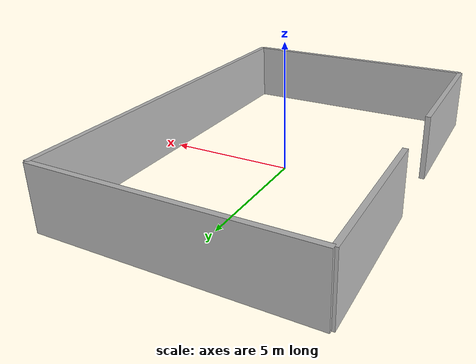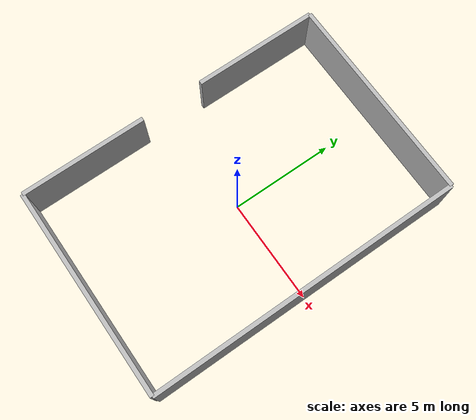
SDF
<sdf version='1.6'>
  <world name='test_solo_muri'>
    <scene>
      <background>0.2 0.2 0.2 1</background>
      <grid>true</grid>
    </scene>
    <include><uri>model://sun</uri></include>

    <!-- Muri perimetrali (un rettangolo di 10x15 metri) -->
    <model name='walls'>
      <static>true</static>
      <pose>0 0 0 0 0 0</pose>
      <link name='link'>
        <collision name='wall_north'><pose>0 7.5 1.25 0 0 0</pose><geometry><box><size>10 0.2 2.5</size></box></geometry></collision>
        <visual name='visual_north'><pose>0 7.5 1.25 0 0 0</pose><geometry><box><size>10 0.2 2.5</size></box></geometry></visual>
        <collision name='wall_south'><pose>0 -7.5 1.25 0 0 0</pose><geometry><box><size>10 0.2 2.5</size></box></geometry></collision>
        <visual name='visual_south'><pose>0 -7.5 1.25 0 0 0</pose><geometry><box><size>10 0.2 2.5</size></box></geometry></visual>
        <collision name='wall_east'><pose>5 0 1.25 0 0 0</pose><geometry><box><size>0.2 15 2.5</size></box></geometry></collision>
        <visual name='visual_east'><pose>5 0 1.25 0 0 0</pose><geometry><box><size>0.2 15 2.5</size></box></geometry></visual>
        <!-- Muro Ovest con apertura (entrata/uscita) -->
        <collision name='wall_west_1'><pose>-5 4.5 1.25 0 0 0</pose><geometry><box><size>0.2 6 2.5</size></box></geometry></collision>
        <visual name='visual_west_1'><pose>-5 4.5 1.25 0 0 0</pose><geometry><box><size>0.2 6 2.5</size></box></geometry></visual>
        <collision name='wall_west_2'><pose>-5 -4.5 1.25 0 0 0</pose><geometry><box><size>0.2 6 2.5</size></box></geometry></collision>
        <visual name='visual_west_2'><pose>-5 -4.5 1.25 0 0 0</pose><geometry><box><size>0.2 6 2.5</size></box></geometry></visual>
      </link>
    </model>

  </world>
</sdf>
